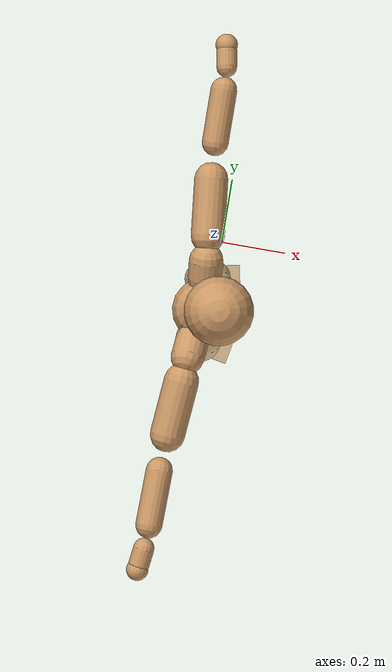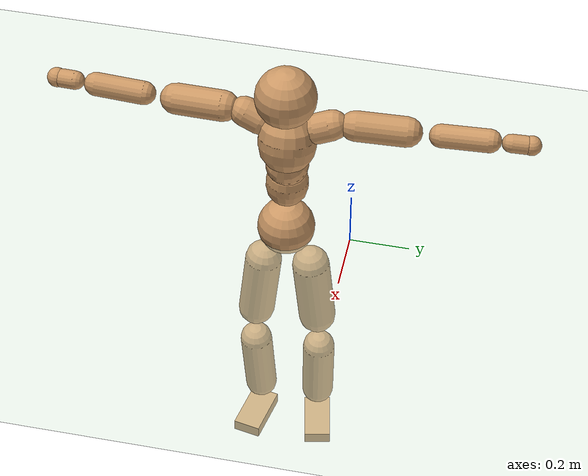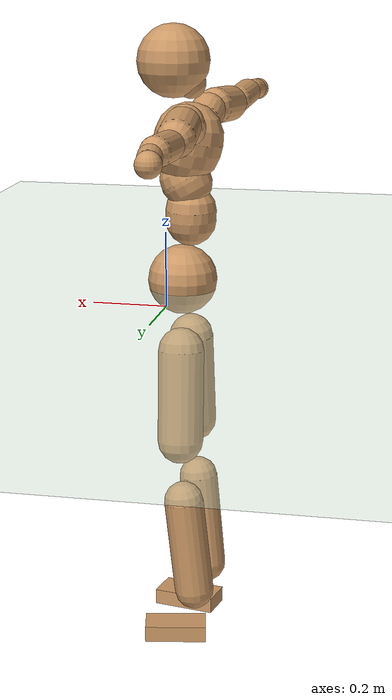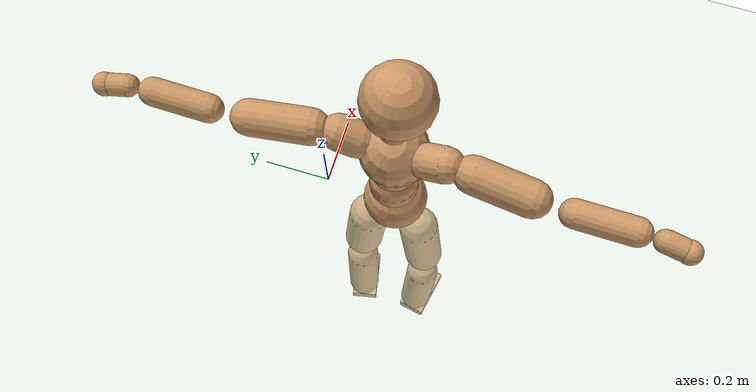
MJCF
<mujoco model="humanoid">
  <compiler coordinate="local" angle="radian"/>
  <default>
    <joint damping="0.0" armature="0.01" stiffness="0.0" limited="true"/>
    <geom conaffinity="1" condim="3" contype="7" margin="0.001" rgba="0.8 0.6 .4 1"/>
  </default>
  <asset>
    <texture type="skybox" builtin="gradient" rgb1=".4 .5 .6" rgb2="0 0 0" width="100" height="100"/>
    <texture builtin="flat" height="1278" mark="cross" markrgb="1 1 1" name="texgeom" random="0.01" rgb1="0.8 0.6 0.4" rgb2="0.8 0.6 0.4" type="cube" width="127"/>
    <texture builtin="checker" height="100" name="texplane" rgb1="0 0 0" rgb2="0.8 0.8 0.8" type="2d" width="100"/>
    <material name="MatPlane" reflectance="0.5" shininess="1" specular="1" texrepeat="60 60" texture="texplane"/>
    <material name="geom" texture="texgeom" texuniform="true"/>
  </asset>
  <worldbody>
    <light cutoff="100" diffuse="1 1 1" dir="-0 0 -1.3" directional="true" exponent="1" pos="0 0 1.3" specular=".1 .1 .1"/>
    <geom conaffinity="1" condim="3" name="floor" pos="0 0 0" rgba="0.8 0.9 0.8 1" size="100 100 .2" type="plane" material="MatPlane"/>
    <body name="Pelvis" pos="-0.0001 -0.2174 0.0244">
      <freejoint name="Pelvis"/>
      <geom type="sphere" contype="1" conaffinity="1" density="500" size="0.0970" pos="0.0000 0.0000 0.0000" name="Pelvis"/>
      <body name="L_Hip" pos="-0.0115 0.0745 -0.0978">
        <joint name="L_Hip_x" type="hinge" pos="0 0 0" axis="1 0 0" stiffness="800" damping="80" armature="0.02" range="-180.0000 180.0000"/>
        <joint name="L_Hip_y" type="hinge" pos="0 0 0" axis="0 1 0" stiffness="800" damping="80" armature="0.02" range="-180.0000 180.0000"/>
        <joint name="L_Hip_z" type="hinge" pos="0 0 0" axis="0 0 1" stiffness="800" damping="80" armature="0.02" range="-180.0000 180.0000"/>
        <geom type="capsule" contype="1" conaffinity="1" density="500" fromto="-0.0009 0.0080 -0.0859 -0.0036 0.0322 -0.3435" size="0.0635" name="L_Hip"/>
        <body name="L_Knee" pos="-0.0045 0.0402 -0.4294">
          <joint name="L_Knee_x" type="hinge" pos="0 0 0" axis="1 0 0" stiffness="800" damping="80" armature="0.02" range="-180.0000 180.0000"/>
          <joint name="L_Knee_y" type="hinge" pos="0 0 0" axis="0 1 0" stiffness="800" damping="80" armature="0.02" range="-180.0000 180.0000"/>
          <joint name="L_Knee_z" type="hinge" pos="0 0 0" axis="0 0 1" stiffness="800" damping="80" armature="0.02" range="-180.0000 180.0000"/>
          <geom type="capsule" contype="1" conaffinity="1" density="500" fromto="-0.0098 -0.0026 -0.0910 -0.0391 -0.0103 -0.3641" size="0.0553" name="L_Knee"/>
          <body name="L_Ankle" pos="-0.0489 -0.0128 -0.4551">
            <joint name="L_Ankle_x" type="hinge" pos="0 0 0" axis="1 0 0" stiffness="800" damping="80" armature="0.02" range="-180.0000 180.0000"/>
            <joint name="L_Ankle_y" type="hinge" pos="0 0 0" axis="0 1 0" stiffness="800" damping="80" armature="0.02" range="-180.0000 180.0000"/>
            <joint name="L_Ankle_z" type="hinge" pos="0 0 0" axis="0 0 1" stiffness="800" damping="80" armature="0.02" range="-180.0000 180.0000"/>
            <geom type="box" contype="1" conaffinity="1" density="500" pos="0.0623 0.0125 -0.0315" size="0.0869 0.0463 0.0228" quat="0.9951 0.0000 0.0000 0.0986" name="L_Ankle"/>
            <body name="L_Toe" pos="0.1246 0.0249 -0.063">
              <joint name="L_Toe_x" type="hinge" pos="0 0 0" axis="1 0 0" stiffness="500" damping="50" armature="0.02" range="-180.0000 180.0000"/>
              <joint name="L_Toe_y" type="hinge" pos="0 0 0" axis="0 1 0" stiffness="500" damping="50" armature="0.02" range="-180.0000 180.0000"/>
              <joint name="L_Toe_z" type="hinge" pos="0 0 0" axis="0 0 1" stiffness="500" damping="50" armature="0.02" range="-180.0000 180.0000"/>
              <geom type="box" contype="1" conaffinity="1" density="500" pos="0.0000 0.0000 0.0311" size="0.0009 0.0023 0.0011" quat="0.9945 0.0000 0.0000 0.1046" name="L_Toe"/>
            </body>
          </body>
        </body>
      </body>
      <body name="R_Hip" pos="-0.0069 -0.0714 -0.0969">
        <joint name="R_Hip_x" type="hinge" pos="0 0 0" axis="1 0 0" stiffness="800" damping="80" armature="0.02" range="-180.0000 180.0000"/>
        <joint name="R_Hip_y" type="hinge" pos="0 0 0" axis="0 1 0" stiffness="800" damping="80" armature="0.02" range="-180.0000 180.0000"/>
        <joint name="R_Hip_z" type="hinge" pos="0 0 0" axis="0 0 1" stiffness="800" damping="80" armature="0.02" range="-180.0000 180.0000"/>
        <geom type="capsule" contype="1" conaffinity="1" density="500" fromto="-0.0015 -0.0095 -0.0875 -0.0061 -0.0380 -0.3500" size="0.0625" name="R_Hip"/>
        <body name="R_Knee" pos="-0.0076 -0.0475 -0.4376">
          <joint name="R_Knee_x" type="hinge" pos="0 0 0" axis="1 0 0" stiffness="800" damping="80" armature="0.02" range="-180.0000 180.0000"/>
          <joint name="R_Knee_y" type="hinge" pos="0 0 0" axis="0 1 0" stiffness="800" damping="80" armature="0.02" range="-180.0000 180.0000"/>
          <joint name="R_Knee_z" type="hinge" pos="0 0 0" axis="0 0 1" stiffness="800" damping="80" armature="0.02" range="-180.0000 180.0000"/>
          <geom type="capsule" contype="1" conaffinity="1" density="500" fromto="-0.0092 0.0034 -0.0911 -0.0369 0.0134 -0.3644" size="0.0555" name="R_Knee"/>
          <body name="R_Ankle" pos="-0.0462 0.0168 -0.4555">
            <joint name="R_Ankle_x" type="hinge" pos="0 0 0" axis="1 0 0" stiffness="800" damping="80" armature="0.02" range="-180.0000 180.0000"/>
            <joint name="R_Ankle_y" type="hinge" pos="0 0 0" axis="0 1 0" stiffness="800" damping="80" armature="0.02" range="-180.0000 180.0000"/>
            <joint name="R_Ankle_z" type="hinge" pos="0 0 0" axis="0 0 1" stiffness="800" damping="80" armature="0.02" range="-180.0000 180.0000"/>
            <geom type="box" contype="1" conaffinity="1" density="500" pos="0.0641 -0.0125 -0.0271" size="0.0894 0.0478 0.0221" quat="0.9953 0.0000 0.0000 -0.0964" name="R_Ankle"/>
            <body name="R_Toe" pos="0.1283 -0.0251 -0.0541">
              <joint name="R_Toe_x" type="hinge" pos="0 0 0" axis="1 0 0" stiffness="500" damping="50" armature="0.02" range="-180.0000 180.0000"/>
              <joint name="R_Toe_y" type="hinge" pos="0 0 0" axis="0 1 0" stiffness="500" damping="50" armature="0.02" range="-180.0000 180.0000"/>
              <joint name="R_Toe_z" type="hinge" pos="0 0 0" axis="0 0 1" stiffness="500" damping="50" armature="0.02" range="-180.0000 180.0000"/>
              <geom type="box" contype="1" conaffinity="1" density="500" pos="0.0000 0.0000 0.0296" size="0.0008 0.0023 0.0012" quat="0.9962 0.0000 0.0000 -0.0876" name="R_Toe"/>
            </body>
          </body>
        </body>
      </body>
      <body name="Torso" pos="-0.0219 -0.0031 0.1124">
        <joint name="Torso_x" type="hinge" pos="0 0 0" axis="1 0 0" stiffness="1000" damping="100" armature="0.02" range="-180.0000 180.0000"/>
        <joint name="Torso_y" type="hinge" pos="0 0 0" axis="0 1 0" stiffness="1000" damping="100" armature="0.02" range="-180.0000 180.0000"/>
        <joint name="Torso_z" type="hinge" pos="0 0 0" axis="0 0 1" stiffness="1000" damping="100" armature="0.02" range="-180.0000 180.0000"/>
        <geom type="capsule" contype="1" conaffinity="1" density="500" fromto="-0.0011 0.0025 0.0839 -0.0007 0.0017 0.0559" size="0.0706" name="Torso"/>
        <body name="Spine" pos="-0.0018 0.0042 0.1399">
          <joint name="Spine_x" type="hinge" pos="0 0 0" axis="1 0 0" stiffness="1000" damping="100" armature="0.02" range="-180.0000 180.0000"/>
          <joint name="Spine_y" type="hinge" pos="0 0 0" axis="0 1 0" stiffness="1000" damping="100" armature="0.02" range="-180.0000 180.0000"/>
          <joint name="Spine_z" type="hinge" pos="0 0 0" axis="0 0 1" stiffness="1000" damping="100" armature="0.02" range="-180.0000 180.0000"/>
          <geom type="capsule" contype="1" conaffinity="1" density="500" fromto="0.0175 0.0007 0.0317 0.0117 0.0005 0.0212" size="0.071" name="Spine"/>
          <body name="Chest" pos="0.0292 0.0012 0.0529">
            <joint name="Chest_x" type="hinge" pos="0 0 0" axis="1 0 0" stiffness="1000" damping="100" armature="0.02" range="-180.0000 180.0000"/>
            <joint name="Chest_y" type="hinge" pos="0 0 0" axis="0 1 0" stiffness="1000" damping="100" armature="0.02" range="-180.0000 180.0000"/>
            <joint name="Chest_z" type="hinge" pos="0 0 0" axis="0 0 1" stiffness="1000" damping="100" armature="0.02" range="-180.0000 180.0000"/>
            <geom type="capsule" contype="1" conaffinity="1" density="500" fromto="-0.0236 -0.0010 0.0926 -0.0158 -0.0007 0.0618" size="0.0959" name="Chest"/>
            <body name="Neck" pos="-0.0404 -0.0033 0.2226">
              <joint name="Neck_x" type="hinge" pos="0 0 0" axis="1 0 0" stiffness="500" damping="50" armature="0.02" range="-180.0000 180.0000"/>
              <joint name="Neck_y" type="hinge" pos="0 0 0" axis="0 1 0" stiffness="500" damping="50" armature="0.02" range="-180.0000 180.0000"/>
              <joint name="Neck_z" type="hinge" pos="0 0 0" axis="0 0 1" stiffness="500" damping="50" armature="0.02" range="-180.0000 180.0000"/>
              <geom type="capsule" contype="1" conaffinity="1" density="500" fromto="0.0119 0.0011 0.0150 0.0476 0.0044 0.0599" size="0.0417" name="Neck"/>
              <body name="Head" pos="0.0595 0.0056 0.0749">
                <joint name="Head_x" type="hinge" pos="0 0 0" axis="1 0 0" stiffness="500" damping="50" armature="0.02" range="-180.0000 180.0000"/>
                <joint name="Head_y" type="hinge" pos="0 0 0" axis="0 1 0" stiffness="500" damping="50" armature="0.02" range="-180.0000 180.0000"/>
                <joint name="Head_z" type="hinge" pos="0 0 0" axis="0 0 1" stiffness="500" damping="50" armature="0.02" range="-180.0000 180.0000"/>
                <geom type="sphere" contype="1" conaffinity="1" density="500" size="0.1004" pos="0.0000 0.0000 0.0000" name="Head"/>
              </body>
            </body>
            <body name="L_Thorax" pos="-0.036 0.0762 0.1213">
              <joint name="L_Thorax_x" type="hinge" pos="0 0 0" axis="1 0 0" stiffness="500" damping="50" armature="0.02" range="-180.0000 180.0000"/>
              <joint name="L_Thorax_y" type="hinge" pos="0 0 0" axis="0 1 0" stiffness="500" damping="50" armature="0.02" range="-180.0000 180.0000"/>
              <joint name="L_Thorax_z" type="hinge" pos="0 0 0" axis="0 0 1" stiffness="500" damping="50" armature="0.02" range="-180.0000 180.0000"/>
              <geom type="capsule" contype="1" conaffinity="1" density="500" fromto="-0.0014 0.0164 0.0070 -0.0055 0.0656 0.0280" size="0.0504" name="L_Thorax"/>
              <body name="L_Shoulder" pos="-0.0069 0.082 0.035">
                <joint name="L_Shoulder_x" type="hinge" pos="0 0 0" axis="1 0 0" stiffness="500" damping="50" armature="0.02" range="-720.0000 720.0000"/>
                <joint name="L_Shoulder_y" type="hinge" pos="0 0 0" axis="0 1 0" stiffness="500" damping="50" armature="0.02" range="-720.0000 720.0000"/>
                <joint name="L_Shoulder_z" type="hinge" pos="0 0 0" axis="0 0 1" stiffness="500" damping="50" armature="0.02" range="-720.0000 720.0000"/>
                <geom type="capsule" contype="1" conaffinity="1" density="500" fromto="-0.0060 0.0553 -0.0037 -0.0240 0.2213 -0.0146" size="0.0497" name="L_Shoulder"/>
                <body name="L_Elbow" pos="-0.03 0.2767 -0.0183">
                  <joint name="L_Elbow_x" type="hinge" pos="0 0 0" axis="1 0 0" stiffness="500" damping="50" armature="0.02" range="-720.0000 720.0000"/>
                  <joint name="L_Elbow_y" type="hinge" pos="0 0 0" axis="0 1 0" stiffness="500" damping="50" armature="0.02" range="-720.0000 720.0000"/>
                  <joint name="L_Elbow_z" type="hinge" pos="0 0 0" axis="0 0 1" stiffness="500" damping="50" armature="0.02" range="-720.0000 720.0000"/>
                  <geom type="capsule" contype="1" conaffinity="1" density="500" fromto="-0.0002 0.0519 0.0024 -0.0008 0.2076 0.0097" size="0.0387" name="L_Elbow"/>
                  <body name="L_Wrist" pos="-0.001 0.2595 0.0121">
                    <joint name="L_Wrist_x" type="hinge" pos="0 0 0" axis="1 0 0" stiffness="300" damping="30" armature="0.02" range="-180.0000 180.0000"/>
                    <joint name="L_Wrist_y" type="hinge" pos="0 0 0" axis="0 1 0" stiffness="300" damping="30" armature="0.02" range="-180.0000 180.0000"/>
                    <joint name="L_Wrist_z" type="hinge" pos="0 0 0" axis="0 0 1" stiffness="300" damping="30" armature="0.02" range="-180.0000 180.0000"/>
                    <geom type="capsule" contype="1" conaffinity="1" density="500" fromto="-0.0027 0.0161 -0.0020 -0.0109 0.0644 -0.0080" size="0.0302" name="L_Wrist"/>
                    <body name="L_Hand" pos="-0.0137 0.0805 -0.01">
                      <joint name="L_Hand_x" type="hinge" pos="0 0 0" axis="1 0 0" stiffness="300" damping="30" armature="0.02" range="-180.0000 180.0000"/>
                      <joint name="L_Hand_y" type="hinge" pos="0 0 0" axis="0 1 0" stiffness="300" damping="30" armature="0.02" range="-180.0000 180.0000"/>
                      <joint name="L_Hand_z" type="hinge" pos="0 0 0" axis="0 0 1" stiffness="300" damping="30" armature="0.02" range="-180.0000 180.0000"/>
                      <geom type="sphere" contype="1" conaffinity="1" density="500" size="0.0324" pos="0.0000 0.0000 0.0000" name="L_Hand"/>
                    </body>
                  </body>
                </body>
              </body>
            </body>
            <body name="R_Thorax" pos="-0.0417 -0.0781 0.1193">
              <joint name="R_Thorax_x" type="hinge" pos="0 0 0" axis="1 0 0" stiffness="500" damping="50" armature="0.02" range="-180.0000 180.0000"/>
              <joint name="R_Thorax_y" type="hinge" pos="0 0 0" axis="0 1 0" stiffness="500" damping="50" armature="0.02" range="-180.0000 180.0000"/>
              <joint name="R_Thorax_z" type="hinge" pos="0 0 0" axis="0 0 1" stiffness="500" damping="50" armature="0.02" range="-180.0000 180.0000"/>
              <geom type="capsule" contype="1" conaffinity="1" density="500" fromto="-0.0016 -0.0172 0.0074 -0.0063 -0.0686 0.0295" size="0.0493" name="R_Thorax"/>
              <body name="R_Shoulder" pos="-0.0079 -0.0858 0.0368">
                <joint name="R_Shoulder_x" type="hinge" pos="0 0 0" axis="1 0 0" stiffness="500" damping="50" armature="0.02" range="-720.0000 720.0000"/>
                <joint name="R_Shoulder_y" type="hinge" pos="0 0 0" axis="0 1 0" stiffness="500" damping="50" armature="0.02" range="-720.0000 720.0000"/>
                <joint name="R_Shoulder_z" type="hinge" pos="0 0 0" axis="0 0 1" stiffness="500" damping="50" armature="0.02" range="-720.0000 720.0000"/>
                <geom type="capsule" contype="1" conaffinity="1" density="500" fromto="-0.0048 -0.0538 -0.0037 -0.0192 -0.2154 -0.0149" size="0.0514" name="R_Shoulder"/>
                <body name="R_Elbow" pos="-0.024 -0.2692 -0.0186">
                  <joint name="R_Elbow_x" type="hinge" pos="0 0 0" axis="1 0 0" stiffness="500" damping="50" armature="0.02" range="-720.0000 720.0000"/>
                  <joint name="R_Elbow_y" type="hinge" pos="0 0 0" axis="0 1 0" stiffness="500" damping="50" armature="0.02" range="-720.0000 720.0000"/>
                  <joint name="R_Elbow_z" type="hinge" pos="0 0 0" axis="0 0 1" stiffness="500" damping="50" armature="0.02" range="-720.0000 720.0000"/>
                  <geom type="capsule" contype="1" conaffinity="1" density="500" fromto="-0.0012 -0.0539 0.0020 -0.0046 -0.2157 0.0082" size="0.0392" name="R_Elbow"/>
                  <body name="R_Wrist" pos="-0.0058 -0.2696 0.0102">
                    <joint name="R_Wrist_x" type="hinge" pos="0 0 0" axis="1 0 0" stiffness="300" damping="30" armature="0.02" range="-180.0000 180.0000"/>
                    <joint name="R_Wrist_y" type="hinge" pos="0 0 0" axis="0 1 0" stiffness="300" damping="30" armature="0.02" range="-180.0000 180.0000"/>
                    <joint name="R_Wrist_z" type="hinge" pos="0 0 0" axis="0 0 1" stiffness="300" damping="30" armature="0.02" range="-180.0000 180.0000"/>
                    <geom type="capsule" contype="1" conaffinity="1" density="500" fromto="-0.0021 -0.0163 -0.0015 -0.0084 -0.0652 -0.0059" size="0.031" name="R_Wrist"/>
                    <body name="R_Hand" pos="-0.0105 -0.0815 -0.0073">
                      <joint name="R_Hand_x" type="hinge" pos="0 0 0" axis="1 0 0" stiffness="300" damping="30" armature="0.02" range="-180.0000 180.0000"/>
                      <joint name="R_Hand_y" type="hinge" pos="0 0 0" axis="0 1 0" stiffness="300" damping="30" armature="0.02" range="-180.0000 180.0000"/>
                      <joint name="R_Hand_z" type="hinge" pos="0 0 0" axis="0 0 1" stiffness="300" damping="30" armature="0.02" range="-180.0000 180.0000"/>
                      <geom type="sphere" contype="1" conaffinity="1" density="500" size="0.0327" pos="0.0000 0.0000 0.0000" name="R_Hand"/>
                    </body>
                  </body>
                </body>
              </body>
            </body>
          </body>
        </body>
      </body>
    </body>
  </worldbody>
  <actuator>
    <motor name="L_Hip_x" joint="L_Hip_x" gear="500"/>
    <motor name="L_Hip_y" joint="L_Hip_y" gear="500"/>
    <motor name="L_Hip_z" joint="L_Hip_z" gear="500"/>
    <motor name="L_Knee_x" joint="L_Knee_x" gear="500"/>
    <motor name="L_Knee_y" joint="L_Knee_y" gear="500"/>
    <motor name="L_Knee_z" joint="L_Knee_z" gear="500"/>
    <motor name="L_Ankle_x" joint="L_Ankle_x" gear="500"/>
    <motor name="L_Ankle_y" joint="L_Ankle_y" gear="500"/>
    <motor name="L_Ankle_z" joint="L_Ankle_z" gear="500"/>
    <motor name="L_Toe_x" joint="L_Toe_x" gear="500"/>
    <motor name="L_Toe_y" joint="L_Toe_y" gear="500"/>
    <motor name="L_Toe_z" joint="L_Toe_z" gear="500"/>
    <motor name="R_Hip_x" joint="R_Hip_x" gear="500"/>
    <motor name="R_Hip_y" joint="R_Hip_y" gear="500"/>
    <motor name="R_Hip_z" joint="R_Hip_z" gear="500"/>
    <motor name="R_Knee_x" joint="R_Knee_x" gear="500"/>
    <motor name="R_Knee_y" joint="R_Knee_y" gear="500"/>
    <motor name="R_Knee_z" joint="R_Knee_z" gear="500"/>
    <motor name="R_Ankle_x" joint="R_Ankle_x" gear="500"/>
    <motor name="R_Ankle_y" joint="R_Ankle_y" gear="500"/>
    <motor name="R_Ankle_z" joint="R_Ankle_z" gear="500"/>
    <motor name="R_Toe_x" joint="R_Toe_x" gear="500"/>
    <motor name="R_Toe_y" joint="R_Toe_y" gear="500"/>
    <motor name="R_Toe_z" joint="R_Toe_z" gear="500"/>
    <motor name="Torso_x" joint="Torso_x" gear="500"/>
    <motor name="Torso_y" joint="Torso_y" gear="500"/>
    <motor name="Torso_z" joint="Torso_z" gear="500"/>
    <motor name="Spine_x" joint="Spine_x" gear="500"/>
    <motor name="Spine_y" joint="Spine_y" gear="500"/>
    <motor name="Spine_z" joint="Spine_z" gear="500"/>
    <motor name="Chest_x" joint="Chest_x" gear="500"/>
    <motor name="Chest_y" joint="Chest_y" gear="500"/>
    <motor name="Chest_z" joint="Chest_z" gear="500"/>
    <motor name="Neck_x" joint="Neck_x" gear="500"/>
    <motor name="Neck_y" joint="Neck_y" gear="500"/>
    <motor name="Neck_z" joint="Neck_z" gear="500"/>
    <motor name="Head_x" joint="Head_x" gear="500"/>
    <motor name="Head_y" joint="Head_y" gear="500"/>
    <motor name="Head_z" joint="Head_z" gear="500"/>
    <motor name="L_Thorax_x" joint="L_Thorax_x" gear="500"/>
    <motor name="L_Thorax_y" joint="L_Thorax_y" gear="500"/>
    <motor name="L_Thorax_z" joint="L_Thorax_z" gear="500"/>
    <motor name="L_Shoulder_x" joint="L_Shoulder_x" gear="500"/>
    <motor name="L_Shoulder_y" joint="L_Shoulder_y" gear="500"/>
    <motor name="L_Shoulder_z" joint="L_Shoulder_z" gear="500"/>
    <motor name="L_Elbow_x" joint="L_Elbow_x" gear="500"/>
    <motor name="L_Elbow_y" joint="L_Elbow_y" gear="500"/>
    <motor name="L_Elbow_z" joint="L_Elbow_z" gear="500"/>
    <motor name="L_Wrist_x" joint="L_Wrist_x" gear="500"/>
    <motor name="L_Wrist_y" joint="L_Wrist_y" gear="500"/>
    <motor name="L_Wrist_z" joint="L_Wrist_z" gear="500"/>
    <motor name="L_Hand_x" joint="L_Hand_x" gear="500"/>
    <motor name="L_Hand_y" joint="L_Hand_y" gear="500"/>
    <motor name="L_Hand_z" joint="L_Hand_z" gear="500"/>
    <motor name="R_Thorax_x" joint="R_Thorax_x" gear="500"/>
    <motor name="R_Thorax_y" joint="R_Thorax_y" gear="500"/>
    <motor name="R_Thorax_z" joint="R_Thorax_z" gear="500"/>
    <motor name="R_Shoulder_x" joint="R_Shoulder_x" gear="500"/>
    <motor name="R_Shoulder_y" joint="R_Shoulder_y" gear="500"/>
    <motor name="R_Shoulder_z" joint="R_Shoulder_z" gear="500"/>
    <motor name="R_Elbow_x" joint="R_Elbow_x" gear="500"/>
    <motor name="R_Elbow_y" joint="R_Elbow_y" gear="500"/>
    <motor name="R_Elbow_z" joint="R_Elbow_z" gear="500"/>
    <motor name="R_Wrist_x" joint="R_Wrist_x" gear="500"/>
    <motor name="R_Wrist_y" joint="R_Wrist_y" gear="500"/>
    <motor name="R_Wrist_z" joint="R_Wrist_z" gear="500"/>
    <motor name="R_Hand_x" joint="R_Hand_x" gear="500"/>
    <motor name="R_Hand_y" joint="R_Hand_y" gear="500"/>
    <motor name="R_Hand_z" joint="R_Hand_z" gear="500"/>
  </actuator>
  <contact>
    <exclude body1="Torso" body2="Chest"/>
    <exclude body1="Head" body2="Chest"/>
    <exclude body1="R_Knee" body2="R_Toe"/>
    <exclude body1="R_Knee" body2="L_Ankle"/>
    <exclude body1="R_Knee" body2="L_Toe"/>
    <exclude body1="L_Knee" body2="L_Toe"/>
    <exclude body1="L_Knee" body2="R_Ankle"/>
    <exclude body1="L_Knee" body2="R_Toe"/>
    <exclude body1="L_Shoulder" body2="Chest"/>
    <exclude body1="R_Shoulder" body2="Chest"/>
  </contact>
  <sensor/>
  <size njmax="700" nconmax="700"/>
</mujoco>
